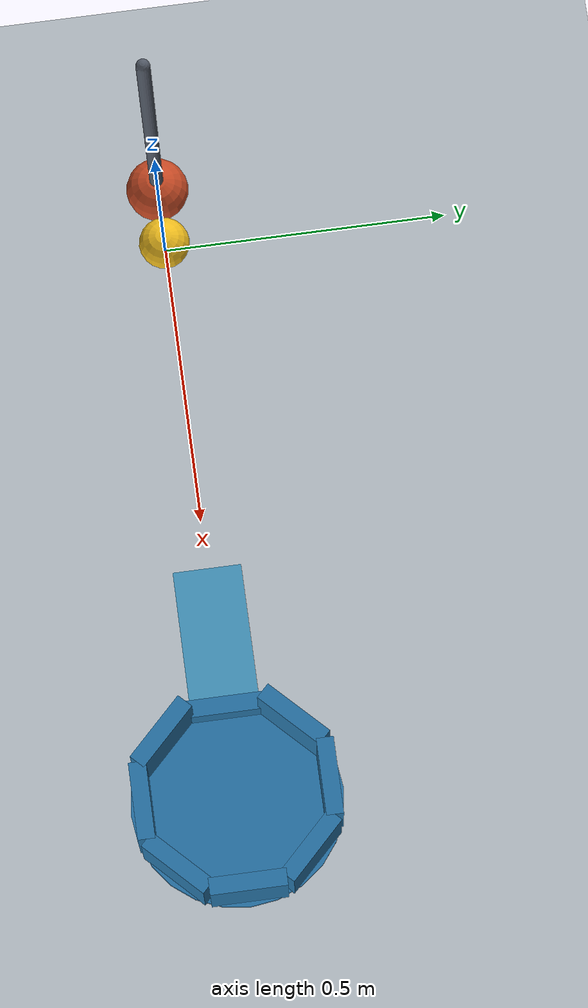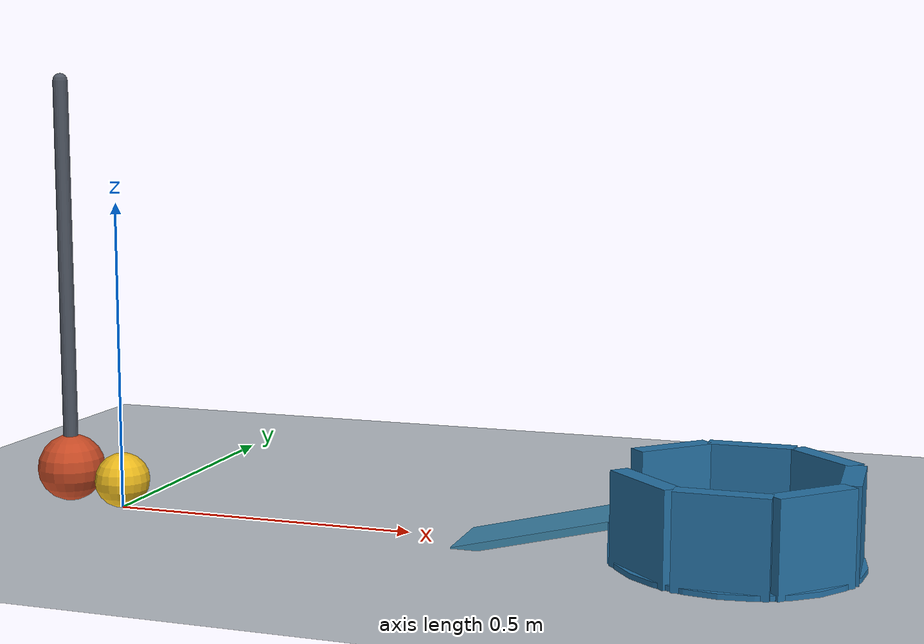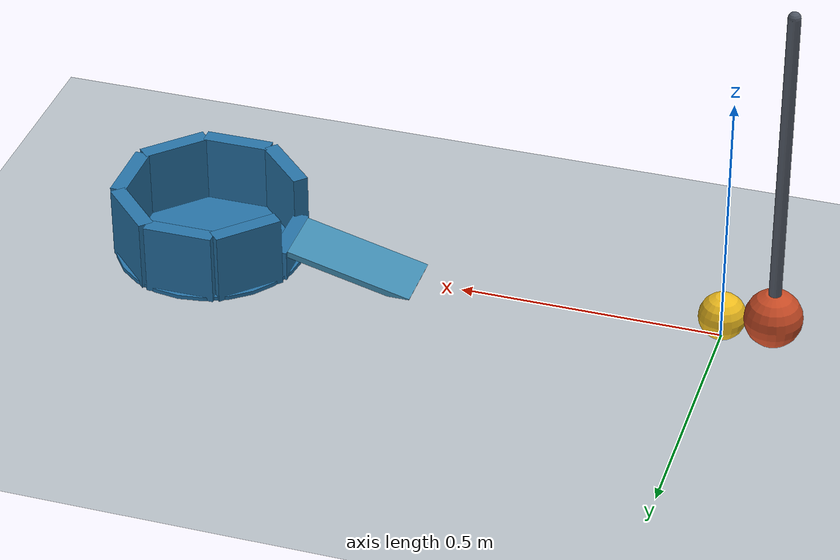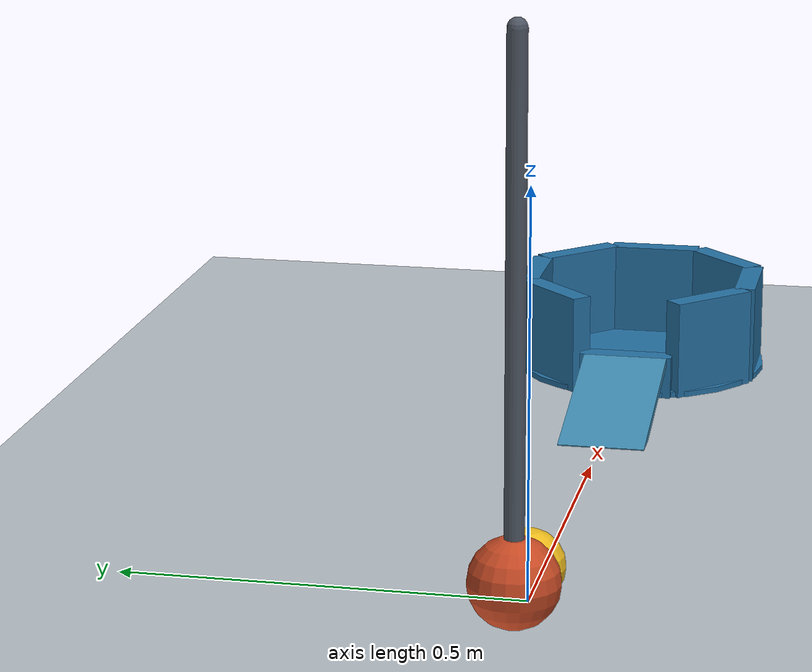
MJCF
<mujoco model="pendulum_ball_and_cup">
  <compiler angle="radian" inertiafromgeom="true"/>
  <option timestep="0.002" gravity="0 0 -9.81" integrator="implicitfast" iterations="80"/>
  <size njmax="500" nconmax="200"/>

  <visual>
    <headlight ambient="0.4 0.4 0.4" diffuse="0.7 0.7 0.7" specular="0.2 0.2 0.2"/>
  </visual>

  <worldbody>
    <light name="scene_light" pos="0.5 -2 3" dir="0 0 -1"/>
    <camera name="overview" pos="0.5 -2.7 1.7" xyaxes="1 0 0 0 0.5 0.8660254"/>
    <geom name="floor" type="plane" size="4 3 0.1" friction="0.65 0.005 0.0008" condim="6" rgba="0.72 0.75 0.78 1"/>

    <body name="pendulum" pos="-0.095 0 0.71">
      <joint name="pendulum_hinge" type="hinge" axis="0 1 0" damping="0.012"/>
      <geom name="pendulum_rod" type="capsule" fromto="0 0 -0.015 0 0 -0.65" size="0.012" mass="0.035" friction="0.5 0.005 0.0005" rgba="0.32 0.35 0.4 1"/>
      <geom name="pendulum_bob" type="sphere" pos="0 0 -0.65" size="0.055" mass="0.3" friction="0.5 0.005 0.0005" solref="0.008 1" solimp="0.95 0.99 0.001" rgba="0.8 0.3 0.15 1"/>
    </body>

    <body name="ball" pos="0 0 0.045">
      <freejoint name="ball_free"/>
      <geom name="ball" type="sphere" size="0.045" mass="0.07" friction="0.65 0.005 0.0008" condim="6" solref="0.008 1" solimp="0.95 0.99 0.001" rgba="0.95 0.75 0.12 1"/>
    </body>

    <body name="cup" pos="1 0 0">
      <geom name="cup_base" type="cylinder" pos="0 0 0.004" size="0.184 0.004" friction="0.9 0.005 0.002" condim="6" solref="0.008 1" rgba="0.15 0.45 0.65 1"/>
      <geom name="cup_front_lip" type="box" pos="-0.16 0 0.03" size="0.015 0.0662742 0.03" friction="0.9 0.005 0.002" condim="6" solref="0.008 1" rgba="0.15 0.45 0.65 1"/>
      <geom name="cup_back" type="box" pos="0.16 0 0.07" size="0.015 0.0662742 0.07" friction="0.9 0.005 0.002" condim="6" solref="0.008 1" rgba="0.15 0.45 0.65 1"/>
      <geom name="cup_left" type="box" pos="0 0.16 0.07" size="0.0662742 0.015 0.07" friction="0.9 0.005 0.002" condim="6" solref="0.008 1" rgba="0.15 0.45 0.65 1"/>
      <geom name="cup_right" type="box" pos="0 -0.16 0.07" size="0.0662742 0.015 0.07" friction="0.9 0.005 0.002" condim="6" solref="0.008 1" rgba="0.15 0.45 0.65 1"/>
      <geom name="cup_front_left" type="box" pos="-0.1131371 0.1131371 0.07" euler="0 0 0.7853981634" size="0.0662742 0.015 0.07" friction="0.9 0.005 0.002" condim="6" solref="0.008 1" rgba="0.15 0.45 0.65 1"/>
      <geom name="cup_front_right" type="box" pos="-0.1131371 -0.1131371 0.07" euler="0 0 -0.7853981634" size="0.0662742 0.015 0.07" friction="0.9 0.005 0.002" condim="6" solref="0.008 1" rgba="0.15 0.45 0.65 1"/>
      <geom name="cup_back_left" type="box" pos="0.1131371 0.1131371 0.07" euler="0 0 -0.7853981634" size="0.0662742 0.015 0.07" friction="0.9 0.005 0.002" condim="6" solref="0.008 1" rgba="0.15 0.45 0.65 1"/>
      <geom name="cup_back_right" type="box" pos="0.1131371 -0.1131371 0.07" euler="0 0 0.7853981634" size="0.0662742 0.015 0.07" friction="0.9 0.005 0.002" condim="6" solref="0.008 1" rgba="0.15 0.45 0.65 1"/>
      <geom name="cup_ramp" type="box" pos="-0.2935448 0 0.0241791" euler="0 -0.2449786631 0" size="0.1236932 0.06 0.006" friction="0.8 0.005 0.0008" condim="6" solref="0.008 1" rgba="0.25 0.55 0.7 1"/>
    </body>
  </worldbody>

  <keyframe>
    <key name="start" qpos="0.8 0 0 0.045 1 0 0 0" qvel="0 0 0 0 0 0 0"/>
  </keyframe>
</mujoco>
